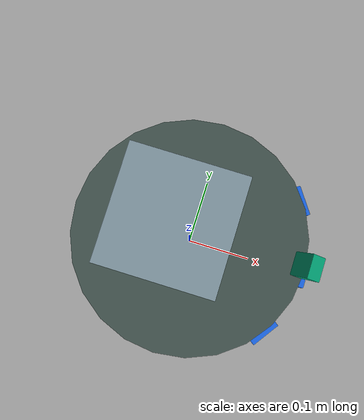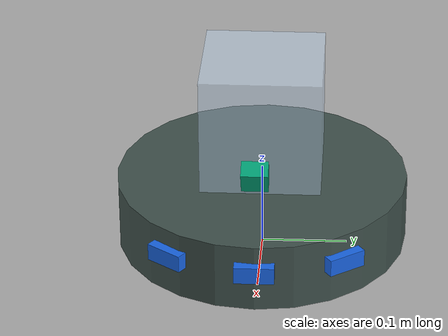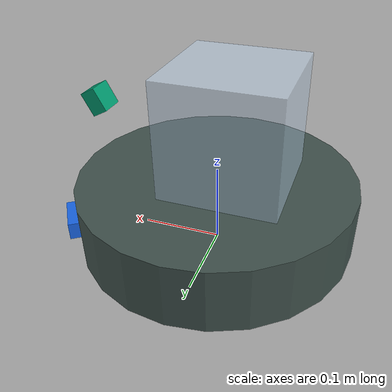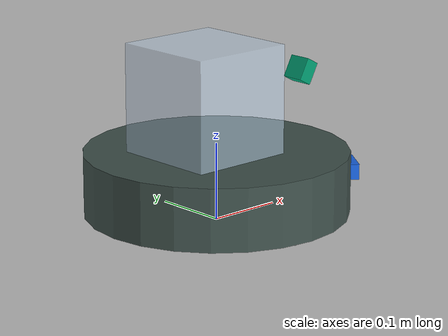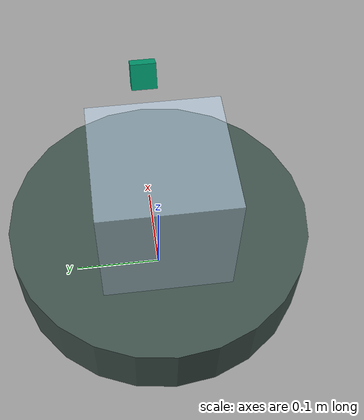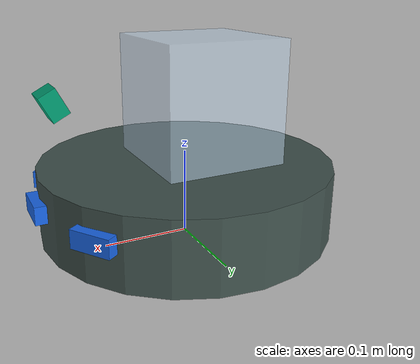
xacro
<?xml version="1.0"?>
<robot name="chotu" xmlns:xacro="http://www.ros.org/wiki/xacro">
  <xacro:property name="chassis_radius" value="0.17"/>
  <xacro:property name="chassis_height" value="0.08"/>
  <xacro:property name="body_height" value="0.22"/>
  <xacro:property name="wheel_radius" value="0.0325"/>
  <xacro:property name="wheel_width" value="0.026"/>
  <xacro:property name="wheel_sep" value="0.26"/>
  <xacro:property name="mass" value="2.4"/>

  <xacro:macro name="cyl_inertia" params="m r h">
    <inertial>
      <mass value="${m}"/>
      <inertia ixx="${m*(3*r*r+h*h)/12}" ixy="0" ixz="0" iyy="${m*(3*r*r+h*h)/12}" iyz="0" izz="${m*r*r/2}"/>
    </inertial>
  </xacro:macro>

  <link name="base_footprint"/>

  <link name="base_link">
    <visual>
      <origin xyz="0 0 ${chassis_height/2}"/>
      <geometry><cylinder radius="${chassis_radius}" length="${chassis_height}"/></geometry>
      <material name="mdf"><color rgba="0.25 0.32 0.30 1"/></material>
    </visual>
    <visual>
      <!-- transparent 470 mL dust container + vacuum tower -->
      <origin xyz="-0.02 0 ${chassis_height + 0.07}"/>
      <geometry><box size="0.14 0.14 0.14"/></geometry>
      <material name="acrylic"><color rgba="0.8 0.9 1.0 0.5"/></material>
    </visual>
    <collision>
      <origin xyz="0 0 ${body_height/2}"/>
      <geometry><cylinder radius="${chassis_radius}" length="${body_height}"/></geometry>
    </collision>
    <xacro:cyl_inertia m="${mass}" r="${chassis_radius}" h="${body_height}"/>
  </link>

  <joint name="base_footprint_joint" type="fixed">
    <parent link="base_footprint"/>
    <child link="base_link"/>
    <origin xyz="0 0 0.012"/>
  </joint>

  <xacro:macro name="wheel" params="side y">
    <link name="${side}_wheel">
      <visual>
        <origin rpy="${pi/2} 0 0"/>
        <geometry><cylinder radius="${wheel_radius}" length="${wheel_width}"/></geometry>
        <material name="tyre"><color rgba="0.05 0.05 0.05 1"/></material>
      </visual>
      <collision>
        <origin rpy="${pi/2} 0 0"/>
        <geometry><cylinder radius="${wheel_radius}" length="${wheel_width}"/></geometry>
      </collision>
      <xacro:cyl_inertia m="0.05" r="${wheel_radius}" h="${wheel_width}"/>
    </link>
    <joint name="${side}_wheel_joint" type="continuous">
      <parent link="base_link"/>
      <child link="${side}_wheel"/>
      <origin xyz="0 ${y} ${wheel_radius - 0.012}"/>
      <axis xyz="0 1 0"/>
    </joint>
  </xacro:macro>
  <xacro:wheel side="left" y="${wheel_sep/2}"/>
  <xacro:wheel side="right" y="${-wheel_sep/2}"/>

  <link name="caster">
    <visual><geometry><sphere radius="0.0105"/></geometry></visual>
    <collision><geometry><sphere radius="0.0105"/></geometry></collision>
    <xacro:cyl_inertia m="0.01" r="0.0105" h="0.021"/>
  </link>
  <joint name="caster_joint" type="fixed">
    <parent link="base_link"/>
    <child link="caster"/>
    <origin xyz="0.12 0 -0.0015"/>
  </joint>

  <!-- contact model: rolling ball caster (no drag), rubber tyres -->
  <gazebo reference="caster"><mu1>0.0</mu1><mu2>0.0</mu2></gazebo>
  <gazebo reference="left_wheel"><mu1>1.5</mu1><mu2>1.5</mu2></gazebo>
  <gazebo reference="right_wheel"><mu1>1.5</mu1><mu2>1.5</mu2></gazebo>

  <!-- range sensors on the rim, 6 cm above the floor -->
  <xacro:macro name="range_sensor" params="name yaw">
    <link name="${name}_link">
      <visual><geometry><box size="0.02 0.045 0.02"/></geometry>
        <material name="sensor"><color rgba="0.1 0.4 0.9 1"/></material></visual>
    </link>
    <joint name="${name}_joint" type="fixed">
      <parent link="base_link"/>
      <child link="${name}_link"/>
      <origin xyz="${chassis_radius*cos(yaw)} ${chassis_radius*sin(yaw)} 0.05" rpy="0 0 ${yaw}"/>
    </joint>
    <gazebo reference="${name}_link">
      <sensor name="${name}" type="gpu_lidar">
        <topic>/gz/${name}</topic>
        <update_rate>17</update_rate>
        <lidar>
          <scan>
            <horizontal><samples>5</samples><min_angle>-0.13</min_angle><max_angle>0.13</max_angle></horizontal>
          </scan>
          <range><min>0.02</min><max>1.5</max><resolution>0.003</resolution></range>
          <noise><type>gaussian</type><mean>0</mean><stddev>0.01</stddev></noise>
        </lidar>
      </sensor>
    </gazebo>
  </xacro:macro>
  <xacro:range_sensor name="us_left" yaw="0.6109"/>
  <xacro:range_sensor name="us_center" yaw="0.0"/>
  <xacro:range_sensor name="us_right" yaw="-0.6109"/>

  <link name="tof_link"/>
  <joint name="tof_joint" type="fixed">
    <parent link="base_link"/>
    <child link="tof_link"/>
    <origin xyz="${chassis_radius} 0 0.07"/>
  </joint>
  <gazebo reference="tof_link">
    <sensor name="tof" type="gpu_lidar">
      <topic>/gz/tof</topic>
      <update_rate>30</update_rate>
      <lidar>
        <scan><horizontal><samples>1</samples><min_angle>0</min_angle><max_angle>0</max_angle></horizontal></scan>
        <range><min>0.03</min><max>1.2</max><resolution>0.001</resolution></range>
      </lidar>
    </sensor>
  </gazebo>

  <link name="imu_link"/>
  <joint name="imu_joint" type="fixed">
    <parent link="base_link"/>
    <child link="imu_link"/>
    <origin xyz="0 0 0.06"/>
  </joint>
  <gazebo reference="imu_link">
    <sensor name="imu" type="imu">
      <topic>/gz/imu</topic>
      <update_rate>50</update_rate>
    </sensor>
  </gazebo>

  <link name="camera_link">
    <visual><geometry><box size="0.02 0.03 0.03"/></geometry></visual>
  </link>
  <joint name="camera_joint" type="fixed">
    <parent link="base_link"/>
    <child link="camera_link"/>
    <origin xyz="0.15 0 0.16" rpy="0 0.489 0"/>   <!-- 28 deg down tilt -->
  </joint>
  <gazebo reference="camera_link">
    <sensor name="camera" type="camera">
      <topic>/camera/image_raw</topic>
      <update_rate>10</update_rate>
      <camera>
        <horizontal_fov>1.082</horizontal_fov>
        <image><width>640</width><height>480</height></image>
        <clip><near>0.05</near><far>5</far></clip>
      </camera>
    </sensor>
  </gazebo>

  <gazebo>
    <plugin filename="ignition-gazebo-diff-drive-system" name="ignition::gazebo::systems::DiffDrive">
      <left_joint>left_wheel_joint</left_joint>
      <right_joint>right_wheel_joint</right_joint>
      <wheel_separation>${wheel_sep}</wheel_separation>
      <wheel_radius>${wheel_radius}</wheel_radius>
      <max_linear_acceleration>0.6</max_linear_acceleration>
      <topic>/cmd_vel</topic>
      <odom_topic>/gz/odom</odom_topic>
      <frame_id>gz_odom</frame_id>
      <child_frame_id>base_footprint</child_frame_id>
      <odom_publish_frequency>30</odom_publish_frequency>
    </plugin>
    <plugin filename="ignition-gazebo-joint-state-publisher-system"
            name="ignition::gazebo::systems::JointStatePublisher"/>
  </gazebo>
</robot>
